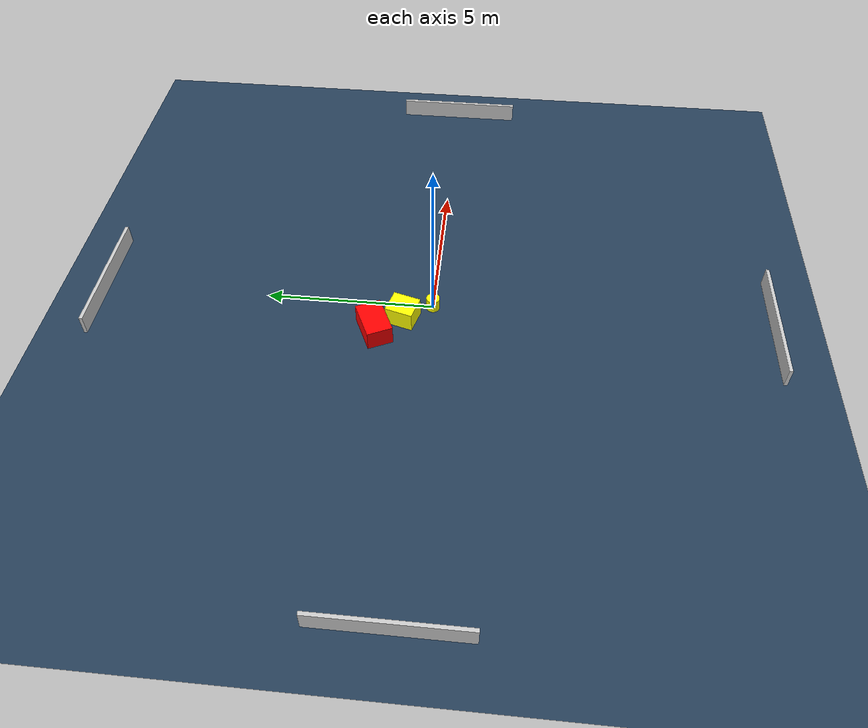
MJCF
<?xml version="1.0" ?>
<mujoco model="generated_environment">
  <option timestep="0.01" integrator="RK4" cone="elliptic"/>
  <default>
    <geom density="1"/>
  </default>
  <asset>
    <texture builtin="gradient" height="3072" name="skybox" rgb1="0.3 0.5 0.7" rgb2="0 0 0" type="skybox" width="512"/>
    <texture builtin="checker" height="300" name="groundplane" rgb1="0.2 0.3 0.4" rgb2="0.1 0.2 0.3" type="2d" width="300"/>
    <material name="groundplane" reflectance="0.2" texrepeat="5 5" texture="groundplane"/>
  </asset>
  <worldbody>
    <light dir="0 0 -1" directional="true" pos="0 0 1.5"/>
    <geom condim="3" friction="0.5 0.005 0.001" material="groundplane" name="floor" pos="0 0 0" size="0 0 0.05" type="plane"/>
    <body name="walls">
      <geom name="wall_1" condim="4" pos="-10.0 0.0 0.3" rgba="0.800000011920929 0.800000011920929 0.800000011920929 1.0" size="0.05 2.0 0.3" type="box"/>
      <geom name="wall_2" condim="4" pos="10.0 0.0 0.3" rgba="0.800000011920929 0.800000011920929 0.800000011920929 1.0" size="0.05 2.0 0.3" type="box"/>
      <geom name="wall_3" condim="4" pos="0.0 -10.0 0.3" rgba="0.800000011920929 0.800000011920929 0.800000011920929 1.0" size="2.0 0.05 0.3" type="box"/>
      <geom name="wall_4" condim="4" pos="0.0 10.0 0.3" rgba="0.800000011920929 0.800000011920929 0.800000011920929 1.0" size="2.0 0.05 0.3" type="box"/>
    </body>
    <body name="robot">
      <joint name="joint_x" type="slide" pos="0 0 0" axis="1 0 0"/>
      <joint name="joint_y" type="slide" pos="0 0 0" axis="0 1 0"/>
      <geom name="robot" type="cylinder" pos="0.0 0.0 0.2" size="0.2 0.2 0.0" mass="5.0" friction="1.0 0.005 0.0001" condim="4" rgba="1.0 1.0 0.0 1.0"/>
    </body>
    <body name="obstacle_1_movable">
      <geom name="obstacle_1_movable" condim="4" pos="-0.5204543425842085 0.8403825142477419 0.3" euler="0 0 254.11795947976495" friction="0.0 0.005 0.001" rgba="1.0 1.0 0.0 1.0" size="0.4152525710238344 0.36267712431447746 0.3" type="box" mass="0.1"/>
      <joint type="free"/>
    </body>
    <body name="obstacle_2_static">
      <geom name="obstacle_2_static" condim="4" pos="-1.114476010649607 1.613036409030328 0.3" euler="0 0 205.3829809040477" friction="0.0 0.005 0.001" rgba="1.0 0.0 0.0 1.0" size="0.5923433543628874 0.38067058261127973 0.3" type="box"/>
    </body>
  </worldbody>
  <actuator>
    <motor name="actuator_x" joint="joint_x" gear="1" ctrlrange="-1 1"/>
    <motor name="actuator_y" joint="joint_y" gear="1" ctrlrange="-1 1"/>
  </actuator>
</mujoco>
